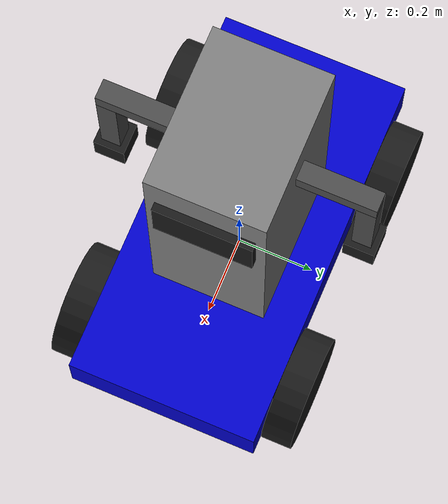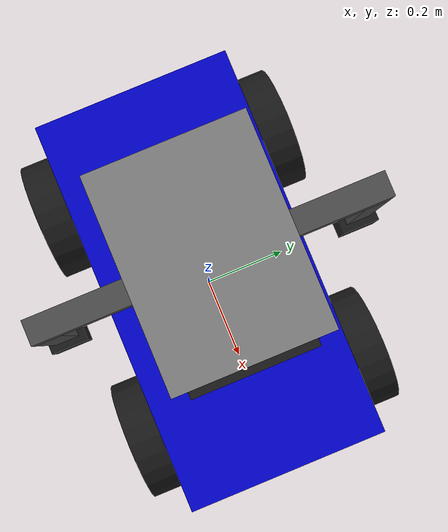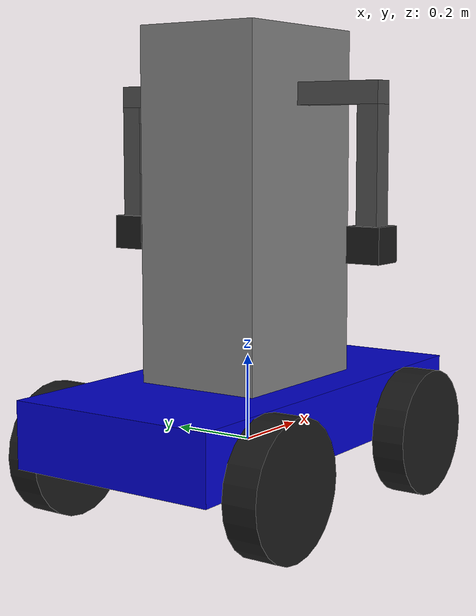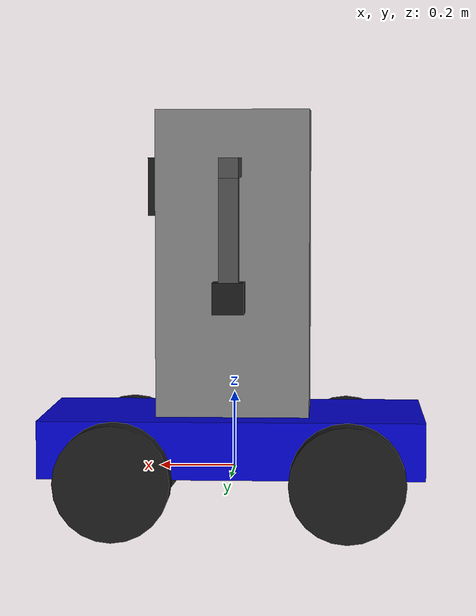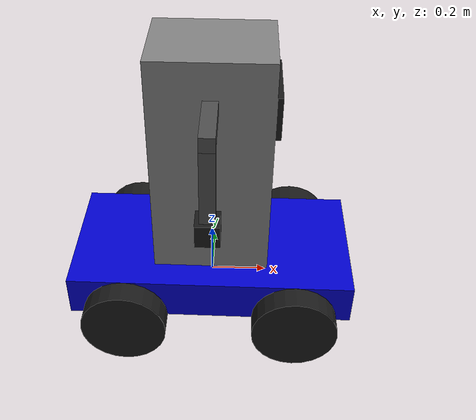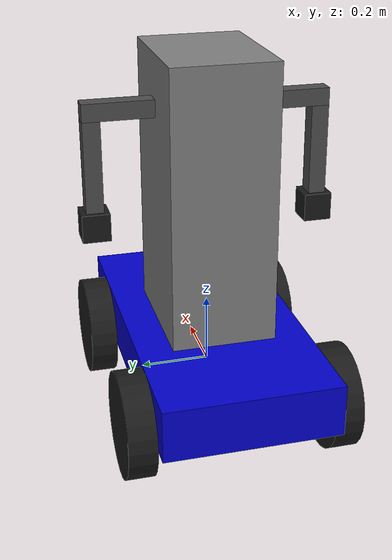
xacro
<?xml version="1.0"?>
<robot name="advanced_differential_robot" xmlns:xacro="http://www.ros.org/wiki/xacro">

  <!-- ========== КОНСТАНТЫ ========== -->
  <xacro:property name="BASE_LENGTH" value="1.0" />
  <xacro:property name="BASE_WIDTH" value="0.5" />
  <xacro:property name="BASE_HEIGHT" value="0.15" />

  <xacro:property name="BODY_LENGTH" value="0.4" />
  <xacro:property name="BODY_WIDTH" value="0.3" />
  <xacro:property name="BODY_HEIGHT" value="0.8" />

  <xacro:property name="WHEEL_RADIUS" value="0.15" />
  <xacro:property name="WHEEL_LENGTH" value="0.08" />

  <xacro:property name="SCREEN_THICKNESS" value="0.02" />
  <xacro:property name="SCREEN_WIDTH" value="0.25" />
  <xacro:property name="SCREEN_HEIGHT" value="0.15" />
  <xacro:property name="WHEEL_X_OFFSET" value="0.3" />
  <xacro:property name="WHEEL_Y_OFFSET" value="0.29" />

  <!-- ========== МАКРОС ДЛЯ КОЛЕСА ========== -->
  <xacro:macro name="wheel" params="name x y">
    <link name="${name}">
      <visual>
        <geometry>
          <cylinder length="${WHEEL_LENGTH}" radius="${WHEEL_RADIUS}"/>
        </geometry>
        <material name="black"/>
      </visual>
      <collision>
        <geometry>
          <cylinder length="${WHEEL_LENGTH}" radius="${WHEEL_RADIUS}"/>
        </geometry>
      </collision>
      <inertial>
        <mass value="1.0"/>
        <inertia ixx="0.0115" ixy="0.0" ixz="0.0"
                 iyy="0.0115" iyz="0.0" izz="0.01125"/>
      </inertial>
    </link>

    <joint name="${name}_joint" type="continuous">
      <parent link="base_link"/>
      <child link="${name}"/>
      <origin xyz="${x} ${y} -0.075" rpy="1.5708 0 0"/>
      <axis xyz="0 0 -1"/>
      <dynamics damping="0.1" friction="0.1"/>
    </joint>
  </xacro:macro>

  <!-- ========== МАКРОС ДЛЯ РУКИ ========== -->
  <xacro:macro name="arm" params="side">
    <!-- Определяем смещения в зависимости от стороны -->
    <xacro:if value="${side == 'left'}">
      <xacro:property name="y_shoulder_origin" value="0.15" />
      <xacro:property name="y_shoulder_visual" value="0.1" />
      <xacro:property name="y_elbow_origin" value="0.175" />
    </xacro:if>
    <xacro:unless value="${side == 'left'}">
      <xacro:property name="y_shoulder_origin" value="-0.15" />
      <xacro:property name="y_shoulder_visual" value="-0.1" />
      <xacro:property name="y_elbow_origin" value="-0.175" />
    </xacro:unless>

    <!-- Плечо -->
    <link name="${side}_shoulder_link">
      <visual>
        <origin xyz="0 ${y_shoulder_visual} 0" rpy="0 0 0"/>
        <geometry>
          <box size="0.05 0.2 0.05"/>
        </geometry>
        <material name="dark_gray"/>
      </visual>
      <collision>
        <origin xyz="0 ${y_shoulder_visual} 0" rpy="0 0 0"/>
        <geometry>
          <box size="0.05 0.2 0.05"/>
        </geometry>
      </collision>
      <inertial>
        <mass value="0.3"/>
        <inertia ixx="0.001025" ixy="0.0" ixz="0.0"
                 iyy="0.000437" iyz="0.0" izz="0.001025"/>
      </inertial>
    </link>

    <joint name="${side}_shoulder_joint" type="fixed">
      <parent link="body_link"/>
      <child link="${side}_shoulder_link"/>
      <origin xyz="0 ${y_shoulder_origin} 0.25" rpy="0 0 0"/>
    </joint>

    <!-- Предплечье -->
    <link name="${side}_forearm_link">
      <visual>
        <origin xyz="0 0 -0.15" rpy="0 0 0"/>
        <geometry>
          <box size="0.05 0.05 0.3"/>
        </geometry>
        <material name="dark_gray"/>
      </visual>
      <collision>
        <origin xyz="0 0 -0.15" rpy="0 0 0"/>
        <geometry>
          <box size="0.05 0.05 0.3"/>
        </geometry>
      </collision>
      <inertial>
        <mass value="0.2"/>
        <inertia ixx="0.00155" ixy="0.0" ixz="0.0"
                 iyy="0.00155" iyz="0.0" izz="0.000083"/>
      </inertial>
    </link>

    <joint name="${side}_elbow_joint" type="fixed">
      <parent link="${side}_shoulder_link"/>
      <child link="${side}_forearm_link"/>
      <origin xyz="0 ${y_elbow_origin} -0.025" rpy="0 0 0"/>
    </joint>

    <!-- Кисть -->
    <link name="${side}_hand_link">
      <visual>
        <geometry>
          <box size="0.08 0.08 0.08"/>
        </geometry>
        <material name="black"/>
      </visual>
      <collision>
        <geometry>
          <box size="0.08 0.08 0.08"/>
        </geometry>
      </collision>
      <inertial>
        <mass value="0.1"/>
        <inertia ixx="0.000107" ixy="0.0" ixz="0.0"
                 iyy="0.000107" iyz="0.0" izz="0.000107"/>
      </inertial>
    </link>

    <joint name="${side}_hand_joint" type="fixed">
      <parent link="${side}_forearm_link"/>
      <child link="${side}_hand_link"/>
      <origin xyz="0 0 -0.3" rpy="0 0 0"/>
    </joint>
  </xacro:macro>

  <!-- ========== ОСНОВНАЯ СТРУКТУРА ========== -->
  <material name="blue">
    <color rgba="0 0 0.8 1"/>
  </material>
  <material name="black">
    <color rgba="0.1 0.1 0.1 1"/>
  </material>
  <material name="gray">
    <color rgba="0.5 0.5 0.5 1"/>
  </material>
  <material name="dark_gray">
    <color rgba="0.3 0.3 0.3 1"/>
  </material>

  <!-- Base footprint -->
  <link name="base_footprint">
    <visual>
      <geometry>
        <box size="0.01 0.01 0.01"/>
      </geometry>
    </visual>
  </link>

  <joint name="base_footprint_joint" type="fixed">
    <parent link="base_footprint"/>
    <child link="base_link"/>
    <origin xyz="0 0 0.075" rpy="0 0 0"/>
  </joint>

  <!-- База робота -->
  <link name="base_link">
    <visual>
      <geometry>
        <box size="${BASE_LENGTH} ${BASE_WIDTH} ${BASE_HEIGHT}"/>
      </geometry>
      <material name="blue"/>
    </visual>
    <collision>
      <geometry>
        <box size="${BASE_LENGTH} ${BASE_WIDTH} ${BASE_HEIGHT}"/>
      </geometry>
    </collision>
    <inertial>
      <mass value="12.0"/>
      <inertia ixx="0.2875" ixy="0.0" ixz="0.0"
               iyy="1.0225" iyz="0.0" izz="1.2875"/>
    </inertial>
  </link>

  <!-- Тело робота -->
  <link name="body_link">
    <visual>
      <geometry>
        <box size="${BODY_LENGTH} ${BODY_WIDTH} ${BODY_HEIGHT}"/>
      </geometry>
      <material name="gray"/>
    </visual>
    <collision>
      <geometry>
        <box size="${BODY_LENGTH} ${BODY_WIDTH} ${BODY_HEIGHT}"/>
      </geometry>
    </collision>
    <inertial>
      <mass value="6.0"/>
      <inertia ixx="0.3295" ixy="0.0" ixz="0.0"
               iyy="0.408" iyz="0.0" izz="0.0895"/>
    </inertial>
  </link>

  <joint name="body_joint" type="fixed">
    <parent link="base_link"/>
    <child link="body_link"/>
    <origin xyz="0 0 0.475" rpy="0 0 0"/>
  </joint>

  <!-- Экран -->
  <link name="screen_link">
    <visual>
      <geometry>
        <box size="${SCREEN_THICKNESS} ${SCREEN_WIDTH} ${SCREEN_HEIGHT}"/>
      </geometry>
      <material name="black"/>
    </visual>
    <collision>
      <geometry>
        <box size="${SCREEN_THICKNESS} ${SCREEN_WIDTH} ${SCREEN_HEIGHT}"/>
      </geometry>
    </collision>
    <inertial>
      <mass value="0.3"/>
      <inertia ixx="0.000594" ixy="0.0" ixz="0.0"
               iyy="0.000581" iyz="0.0" izz="0.000163"/>
    </inertial>
  </link>

  <joint name="screen_joint" type="fixed">
    <parent link="body_link"/>
    <child link="screen_link"/>
    <origin xyz="0.21 0 0.2" rpy="0 0 0"/>
  </joint>

  <!-- Руки -->
  <xacro:arm side="left"/>
  <xacro:arm side="right"/>

  <!-- Использование макросов для колес -->
  <xacro:wheel name="front_left_wheel" x="${WHEEL_X_OFFSET}" y="${WHEEL_Y_OFFSET}"/>
  <xacro:wheel name="front_right_wheel" x="${WHEEL_X_OFFSET}" y="${-WHEEL_Y_OFFSET}"/>
  <xacro:wheel name="rear_left_wheel" x="${-WHEEL_X_OFFSET}" y="${WHEEL_Y_OFFSET}"/>
  <xacro:wheel name="rear_right_wheel" x="${-WHEEL_X_OFFSET}" y="${-WHEEL_Y_OFFSET}"/>

  <!-- Включаем Gazebo конфигурацию -->
  <xacro:include filename="robot.gazebo.xacro" />
</robot>
